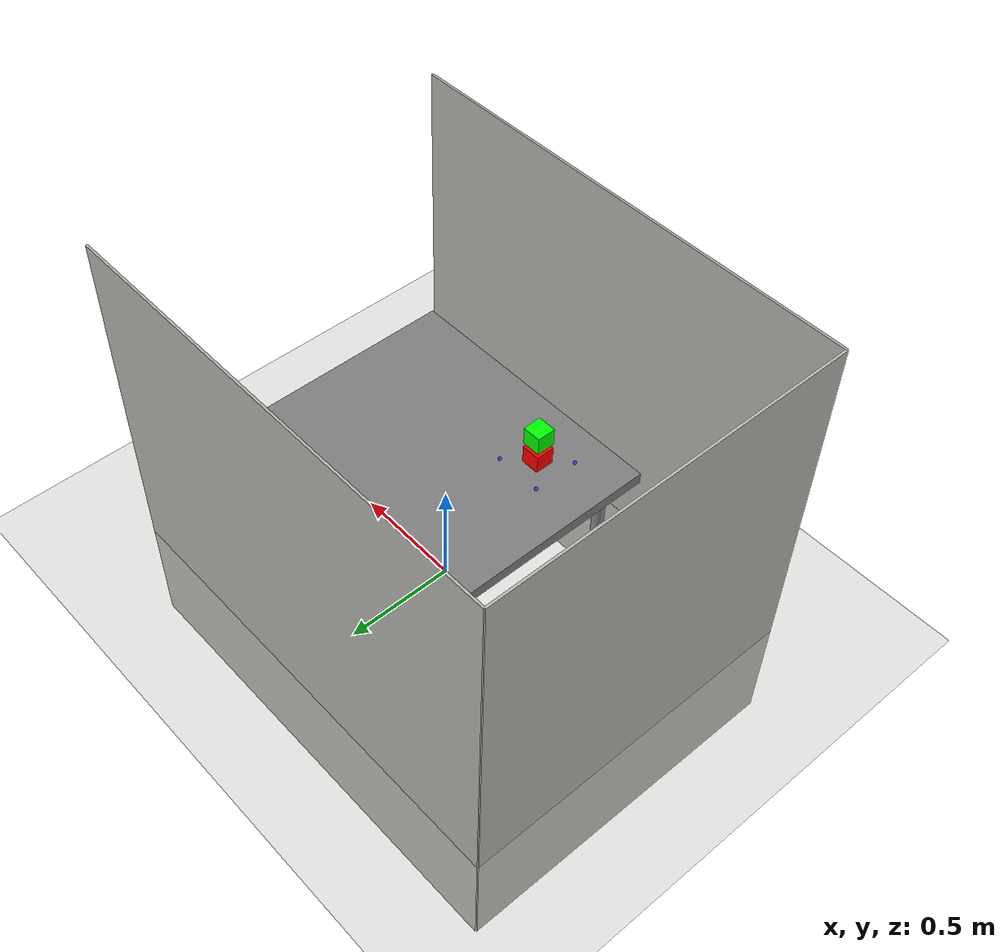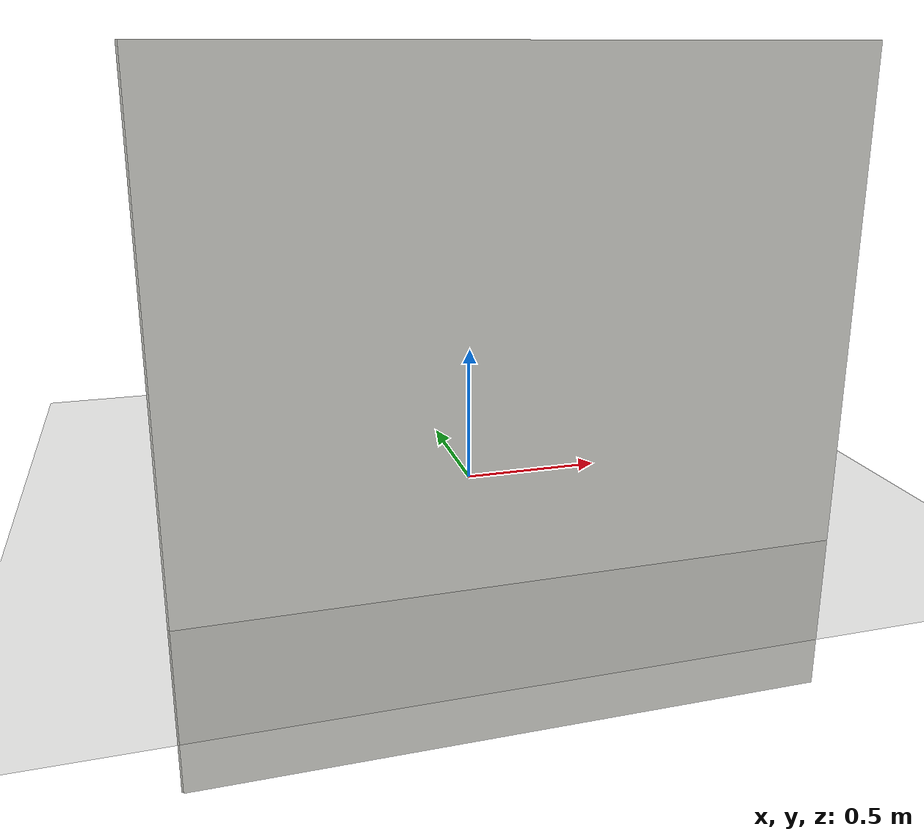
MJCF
<mujoco model="arx5_robosuite_tabletop_static">
  <compiler angle="radian" autolimits="true"/>

  <option timestep="0.008333333333333333" gravity="0 0 -9.81"/>

  <custom>
    <!-- Isaac ARX5 deploy/data collection reference pose, kept here until the robot phase imports ARX5. -->
    <numeric name="arx5_base_pose_reference" data="-0.535 -0.21 0.8 1.0 0.0 0.0 0.0"/>
    <numeric name="workspace_x_range" data="-0.4 -0.2"/>
    <numeric name="workspace_y_range" data="-0.3 -0.1"/>
    <numeric name="robot_xy_jitter_m" data="0.02"/>
    <numeric name="control_dt_reference" data="0.1"/>
  </custom>

  <asset>
    <texture name="floor_grid" type="2d" builtin="checker" width="512" height="512" rgb1="0.72 0.72 0.70" rgb2="0.62 0.62 0.60"/>
    <material name="floor_mat" texture="floor_grid" texrepeat="3 3" reflectance="0.05"/>
    <material name="table_silver" rgba="0.75 0.75 0.72 1" reflectance="0.15" shininess="0.35" specular="0.5"/>
    <material name="table_legs_metal" rgba="0.55 0.55 0.55 1" reflectance="0.3" shininess="0.6" specular="0.4"/>
    <material name="curtain_mat" rgba="0.72 0.72 0.70 1"/>
    <material name="receptive_cube_red" rgba="1.0 0.0 0.0 1.0"/>
    <material name="insertive_cube_green" rgba="0.0 1.0 0.0 1.0"/>
    <material name="workspace_marker_mat" rgba="0.0 0.2 1.0 0.65"/>
  </asset>

  <worldbody>
    <light name="key_light" pos="-0.3 -0.4 3.0" dir="0.2 0.2 -1.0" directional="true" diffuse="0.8 0.8 0.8"/>
    <light name="fill_light" pos="0.5 0.6 2.0" diffuse="0.35 0.35 0.35"/>
    <geom name="floor" type="plane" size="2.0 2.0 0.01" material="floor_mat" pos="0 0 0"/>

    <!-- Robosuite table-only MJCF port. Isaac places the converted USD at z=0.799375; the source MJCF table body is z=0.775 with a 0.025 half-height top, so table_top is z=0.800. -->
    <body name="table" pos="0 0 0.775">
      <geom name="table_collision" pos="0 0 0" size="0.6 0.45 0.025" type="box" group="0" friction="1 0.005 0.0001"/>
      <geom name="table_visual" pos="0 0 0" size="0.6 0.45 0.025" type="box" conaffinity="0" contype="0" group="1" material="table_silver"/>
      <site name="table_top" pos="0 0 0.025" size="0.001 0.001 0.001" rgba="0 0 0 0"/>

      <geom name="table_leg1_visual" pos="0.5 0.35 -0.3875" size="0.025 0.3875" type="cylinder" conaffinity="0" contype="0" group="1" material="table_legs_metal"/>
      <geom name="table_leg2_visual" pos="-0.5 0.35 -0.3875" size="0.025 0.3875" type="cylinder" conaffinity="0" contype="0" group="1" material="table_legs_metal"/>
      <geom name="table_leg3_visual" pos="-0.5 -0.35 -0.3875" size="0.025 0.3875" type="cylinder" conaffinity="0" contype="0" group="1" material="table_legs_metal"/>
      <geom name="table_leg4_visual" pos="0.5 -0.35 -0.3875" size="0.025 0.3875" type="cylinder" conaffinity="0" contype="0" group="1" material="table_legs_metal"/>
    </body>

    <!-- Existing authored robosuite external camera anchor. The camera itself is identity under this body. -->
    <body name="external_cam" pos="0.5170 0.3270 1.3640" quat="0.3604 0.2030 0.5000 0.7609">
      <camera name="external_camera" mode="fixed" pos="0.0 0.0 0.0" quat="1.0 0.0 0.0 0.0" fovy="42.47"/>
    </body>

    <!-- Visual-only curtains matched to current Isaac deploy scene. MuJoCo geom size is half-extent. -->
    <geom name="curtain_back" type="box" pos="-1.1 0.0 0.519" quat="1.0 0.0 0.0 0.0" size="0.005 0.8 1.0625" conaffinity="0" contype="0" group="1" material="curtain_mat"/>
    <geom name="curtain_left" type="box" pos="-0.05 0.8 0.519" quat="0.707 0.0 0.0 -0.707" size="0.005 1.05 1.0625" conaffinity="0" contype="0" group="1" material="curtain_mat"/>
    <geom name="curtain_right" type="box" pos="-0.05 -0.8 0.519" quat="0.707 0.0 0.0 -0.707" size="0.005 1.05 1.0625" conaffinity="0" contype="0" group="1" material="curtain_mat"/>

    <!-- Workspace markers for the current cube-stack/peg workspace. -->
    <site name="workspace_xmin_ymin" pos="-0.4 -0.3 0.805" size="0.008" rgba="0.0 0.2 1.0 0.65"/>
    <site name="workspace_xmin_ymax" pos="-0.4 -0.1 0.805" size="0.008" rgba="0.0 0.2 1.0 0.65"/>
    <site name="workspace_xmax_ymin" pos="-0.2 -0.3 0.805" size="0.008" rgba="0.0 0.2 1.0 0.65"/>
    <site name="workspace_xmax_ymax" pos="-0.2 -0.1 0.805" size="0.008" rgba="0.0 0.2 1.0 0.65"/>

    <body name="receptive_cube" pos="-0.3 -0.2 0.84">
      <freejoint name="receptive_cube_freejoint"/>
      <geom name="receptive_cube_collision" type="box" size="0.04 0.04 0.04" mass="0.05" friction="1 0.005 0.0001" material="receptive_cube_red"/>
    </body>

    <body name="insertive_cube" pos="-0.3 -0.2 0.94">
      <freejoint name="insertive_cube_freejoint"/>
      <geom name="insertive_cube_collision" type="box" size="0.04 0.04 0.04" mass="0.05" friction="1 0.005 0.0001" material="insertive_cube_green"/>
    </body>
  </worldbody>
</mujoco>
